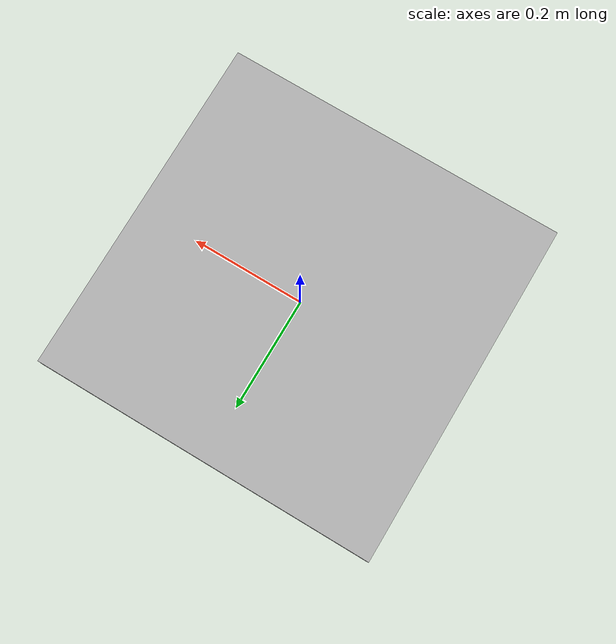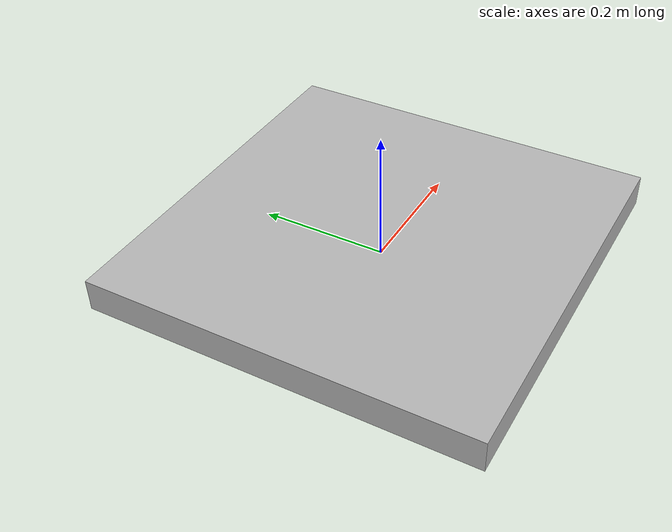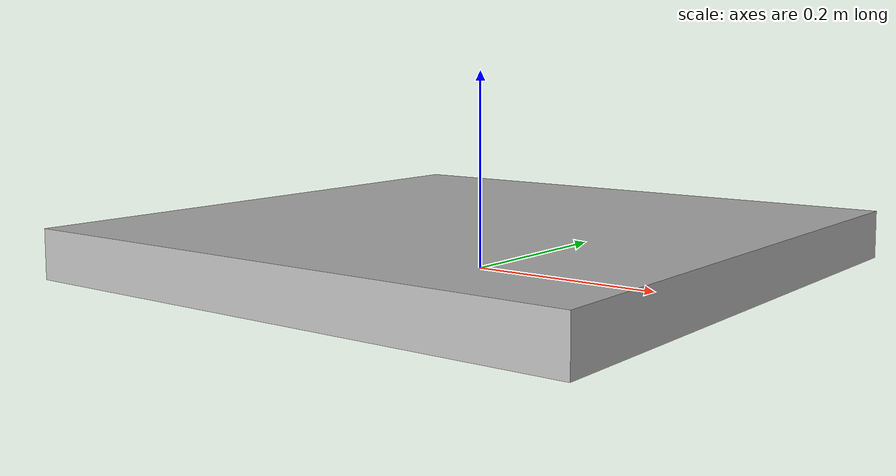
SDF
<?xml version="1.0" ?>

<sdf version="1.6">

<!-- Cubes -->
  <model name="base1">
    <static>true</static>
    <link name="link">
      <pose>0 0 0 0 0 0</pose>
      <inertial>
        <mass>0.001</mass>
        <inertia>
          <ixx>1.0</ixx>
          <ixy>0</ixy>
          <ixz>0</ixz>
          <iyy>1.0</iyy>
          <iyz>0</iyz>
          <izz>1.0</izz>
        </inertia>
      </inertial>
      <collision name="collision">
        <geometry>
          <mesh><uri>model://meshes/base.dae</uri></mesh>
        </geometry>
        <surface>
          <contact>
            <poissons_ratio>0.347</poissons_ratio>
            <elastic_modulus>8.8e+09</elastic_modulus>
            <ode>
              <kp>100000</kp>
              <kd>1</kd>
              <max_vel>1.0</max_vel>
              <min_depth>0.001</min_depth>
            </ode>
          </contact>
          <friction>
            <torsional>
              <coefficient>1.0</coefficient>
              <use_patch_radius>0</use_patch_radius>
              <surface_radius>0.05</surface_radius>
            </torsional>
          </friction>
        </surface>
      </collision>
      <visual name="visual">
        <geometry>
          <mesh><uri>model://meshes/base.dae</uri></mesh>
        </geometry>
      </visual>
    </link>
  </model>

</sdf>
